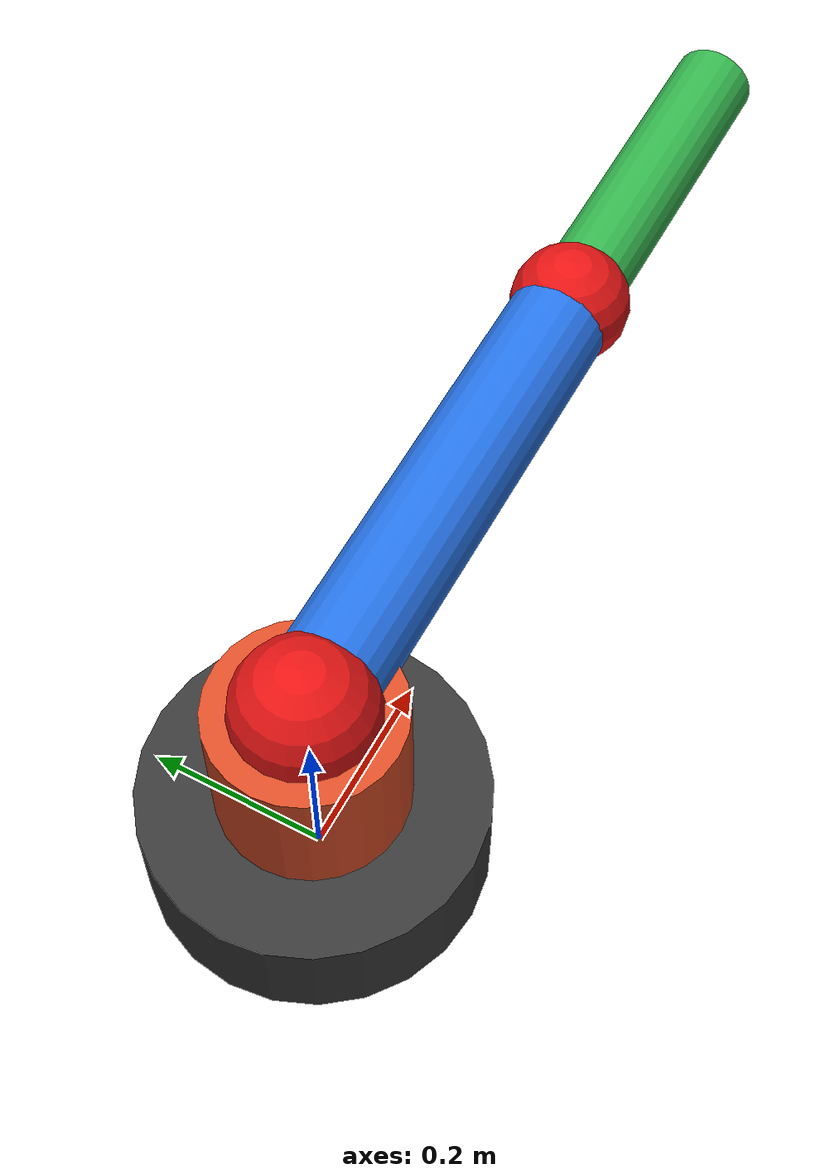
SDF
<?xml version="1.0" ?>

<sdf version="1.9">

  <world name="arm_3dof_world">

    <!-- ==================== World Systems ==================== -->

    <plugin
      filename="gz-sim-physics-system"
      name="gz::sim::systems::Physics">
    </plugin>

    <plugin
      filename="gz-sim-user-commands-system"
      name="gz::sim::systems::UserCommands">
    </plugin>

    <plugin
      filename="gz-sim-scene-broadcaster-system"
      name="gz::sim::systems::SceneBroadcaster">
    </plugin>

    <!-- ==================== Light ==================== -->

    <light type="directional" name="sun">

      <cast_shadows>true</cast_shadows>

      <pose>0 0 10 0 0 0</pose>

      <diffuse>0.8 0.8 0.8 1</diffuse>

      <specular>0.2 0.2 0.2 1</specular>

      <direction>-0.5 0.1 -0.9</direction>

    </light>

    <!--                 3-DOF Lumberjack Arm                   -->

    <model name="lumberjack_arm">

      <!-- Base Link                                            -->

      <link name="base_link">

        <pose>0 0 0.06 0 0 0</pose>

        <inertial>

          <mass>2.0</mass>

          <inertia>
            <ixx>0.0186</ixx>
            <iyy>0.0186</iyy>
            <izz>0.0324</izz>

            <ixy>0</ixy>
            <ixz>0</ixz>
            <iyz>0</iyz>
          </inertia>

        </inertial>

        <visual name="base_visual">

          <geometry>

            <cylinder>
              <radius>0.18</radius>
              <length>0.12</length>
            </cylinder>

          </geometry>

          <material>
            <ambient>0.12 0.12 0.12 1</ambient>
            <diffuse>0.22 0.22 0.22 1</diffuse>
          </material>

        </visual>

        <collision name="base_collision">

          <geometry>

            <cylinder>
              <radius>0.18</radius>
              <length>0.12</length>
            </cylinder>

          </geometry>

        </collision>

      </link>

      <!-- Yaw / Shoulder Mount                                 -->

      <link name="yaw_link">

        <pose relative_to="base_link">
          0 0 0.14 0 0 0
        </pose>

        <inertial>

          <mass>0.30</mass>

          <inertia>
            <ixx>0.0036</ixx>
            <iyy>0.0036</iyy>
            <izz>0.0015</izz>

            <ixy>0</ixy>
            <ixz>0</ixz>
            <iyz>0</iyz>
          </inertia>

        </inertial>

        <visual name="yaw_visual">

          <geometry>

            <cylinder>
              <radius>0.10</radius>
              <length>0.16</length>
            </cylinder>

          </geometry>

          <material>
            <ambient>0.65 0.20 0.10 1</ambient>
            <diffuse>0.85 0.30 0.15 1</diffuse>
          </material>

        </visual>

        <collision name="yaw_collision">

          <geometry>

            <cylinder>
              <radius>0.10</radius>
              <length>0.16</length>
            </cylinder>

          </geometry>

        </collision>

        <visual name="j2_joint_cover">

          <pose>0 0 0.08 0 0 0</pose>

          <geometry>
            <sphere>
              <radius>0.075</radius>
            </sphere>
          </geometry>

          <material>
            <ambient>0.70 0.05 0.05 1</ambient>
            <diffuse>0.90 0.08 0.08 1</diffuse>
          </material>

        </visual>

      </link>

      <!-- Upper Arm                                            -->

      <link name="upper_arm">

        <pose relative_to="yaw_link">
          0.28 0 0.08 0 0 0
        </pose>

        <inertial>

          <mass>0.25</mass>

          <inertia>
            <ixx>0.00034</ixx>
            <iyy>0.00670</iyy>
            <izz>0.00670</izz>

            <ixy>0</ixy>
            <ixz>0</ixz>
            <iyz>0</iyz>
          </inertia>

        </inertial>

        <visual name="upper_arm_visual">

          <!--
            Gazebo 的 cylinder 默认沿 Z 轴。
            绕 Y 轴旋转 90°，使其沿 X 轴伸展。
          -->
          <pose>0 0 0 0 1.5708 0</pose>

          <geometry>
            <cylinder>
              <radius>0.055</radius>
              <length>0.56</length>
            </cylinder>
          </geometry>

          <material>
            <ambient>0.10 0.35 0.70 1</ambient>
            <diffuse>0.15 0.45 0.90 1</diffuse>
          </material>

        </visual>

        <collision name="upper_arm_collision">

          <pose>0 0 0 0 1.5708 0</pose>

          <geometry>
            <cylinder>
              <radius>0.055</radius>
              <length>0.56</length>
            </cylinder>
          </geometry>

        </collision>

        <visual name="j3_joint_cover">

          <pose>0.28 0 0 0 0 0</pose>

          <geometry>
            <sphere>
              <radius>0.065</radius>
            </sphere>
          </geometry>

          <material>
            <ambient>0.70 0.05 0.05 1</ambient>
            <diffuse>0.90 0.08 0.08 1</diffuse>
          </material>

        </visual>

      </link>

      <!-- Forearm                                              -->

      <link name="forearm">

        <pose relative_to="upper_arm">
          0.47 0 0 0 0 0
        </pose>

        <inertial>

          <mass>0.18</mass>

          <inertia>
            <ixx>0.00019</ixx>
            <iyy>0.00226</iyy>
            <izz>0.00226</izz>

            <ixy>0</ixy>
            <ixz>0</ixz>
            <iyz>0</iyz>
          </inertia>

        </inertial>

        <visual name="forearm_visual">

          <pose>0 0 0 0 1.5708 0</pose>

          <geometry>
            <cylinder>
              <radius>0.045</radius>
              <length>0.38</length>
            </cylinder>
          </geometry>

          <material>
            <ambient>0.15 0.55 0.25 1</ambient>
            <diffuse>0.20 0.70 0.30 1</diffuse>
          </material>

        </visual>

        <collision name="forearm_collision">

          <pose>0 0 0 0 1.5708 0</pose>

          <geometry>
            <cylinder>
              <radius>0.045</radius>
              <length>0.38</length>
            </cylinder>
          </geometry>

        </collision>

      </link>

      <!-- Fix Base To World                                    -->

      <joint name="base_fixed" type="fixed">

        <parent>world</parent>

        <child>base_link</child>

      </joint>

      <!-- J1 : Base Yaw                                        -->

      <joint name="j1" type="revolute">

        <pose relative_to="base_link">
          0 0 0.06 0 0 0
        </pose>

        <parent>base_link</parent>

        <child>yaw_link</child>

        <axis>

          <xyz>0 0 1</xyz>

          <limit>
            <lower>-3.14159</lower>
            <upper>3.14159</upper>
            <effort>30</effort>
            <velocity>2.0</velocity>
          </limit>

        </axis>

      </joint>

      <!-- J2 : Shoulder Pitch                                  -->

      <joint name="j2" type="revolute">

        <pose relative_to="yaw_link">
          0 0 0.08 0 0 0
        </pose>

        <parent>yaw_link</parent>

        <child>upper_arm</child>

        <axis>

          <xyz>0 -1 0</xyz>

          <limit>

            <lower>-1.5708</lower>

            <upper>1.5708</upper>

            <effort>30</effort>

            <velocity>2.0</velocity>

          </limit>

        </axis>

      </joint>

      <!-- J3 : Elbow Pitch                                     -->

      <joint name="j3" type="revolute">

        <pose relative_to="upper_arm">
          0.28 0 0 0 0 0
        </pose>

        <parent>upper_arm</parent>

        <child>forearm</child>

        <axis>

          <xyz>0 -1 0</xyz>

          <limit>

            <lower>-1.5708</lower>

            <upper>1.5708</upper>

            <effort>20</effort>

            <velocity>2.0</velocity>

          </limit>

        </axis>

      </joint>

      <!-- J1 Controller                                        -->

      <plugin
        filename="gz-sim-joint-position-controller-system"
        name="gz::sim::systems::JointPositionController">

        <joint_name>j1</joint_name>

        <p_gain>20.0</p_gain>
        <i_gain>0.0</i_gain>
        <d_gain>1.5</d_gain>

        <cmd_max>25.0</cmd_max>
        <cmd_min>-25.0</cmd_min>

      </plugin>

      <!-- J2 Controller                                        -->

      <plugin
        filename="gz-sim-joint-position-controller-system"
        name="gz::sim::systems::JointPositionController">

        <joint_name>j2</joint_name>

        <p_gain>50.0</p_gain>
        <i_gain>5.0</i_gain>
        <d_gain>2.0</d_gain>

        <i_max>5.0</i_max>
        <i_min>-5.0</i_min>

        <cmd_max>35.0</cmd_max>
        <cmd_min>-35.0</cmd_min>

      </plugin>

      <!-- J3 Controller                                        -->

      <plugin
        filename="gz-sim-joint-position-controller-system"
        name="gz::sim::systems::JointPositionController">

        <joint_name>j3</joint_name>

        <p_gain>35.0</p_gain>
        <i_gain>3.0</i_gain>
        <d_gain>1.5</d_gain>

        <i_max>3.0</i_max>
        <i_min>-3.0</i_min>

        <cmd_max>30.0</cmd_max>
        <cmd_min>-30.0</cmd_min>

      </plugin>

      <!-- Joint State Publisher                                -->

      <plugin
        filename="gz-sim-joint-state-publisher-system"
        name="gz::sim::systems::JointStatePublisher">

        <topic>/lumberjack_arm/joint_states</topic>

        <joint_name>j1</joint_name>
        <joint_name>j2</joint_name>
        <joint_name>j3</joint_name>

      </plugin>

    </model>

  </world>

</sdf>
